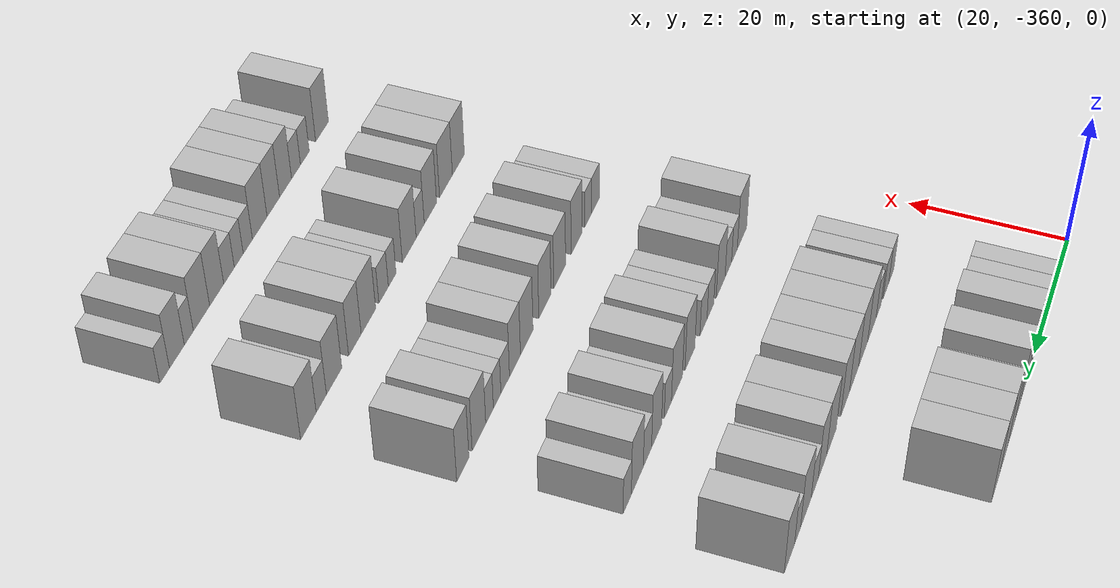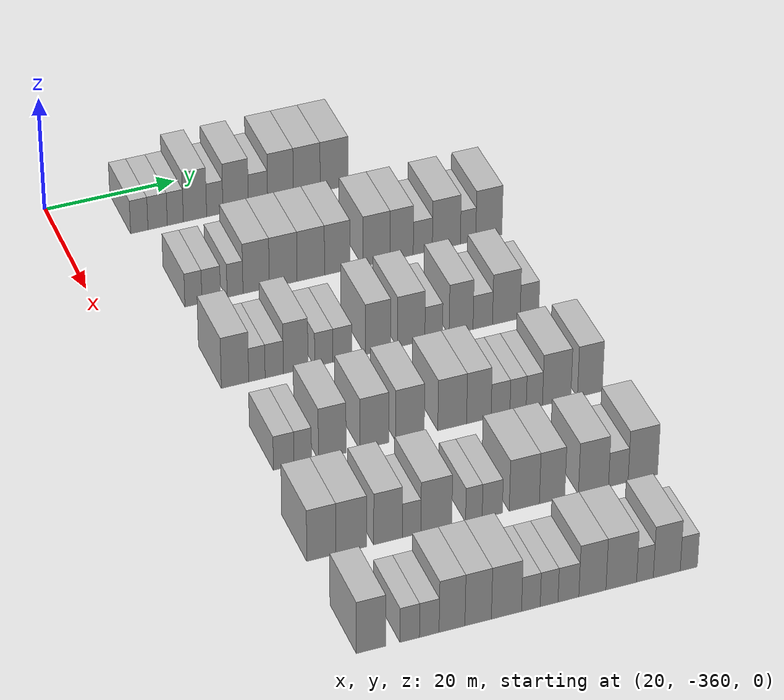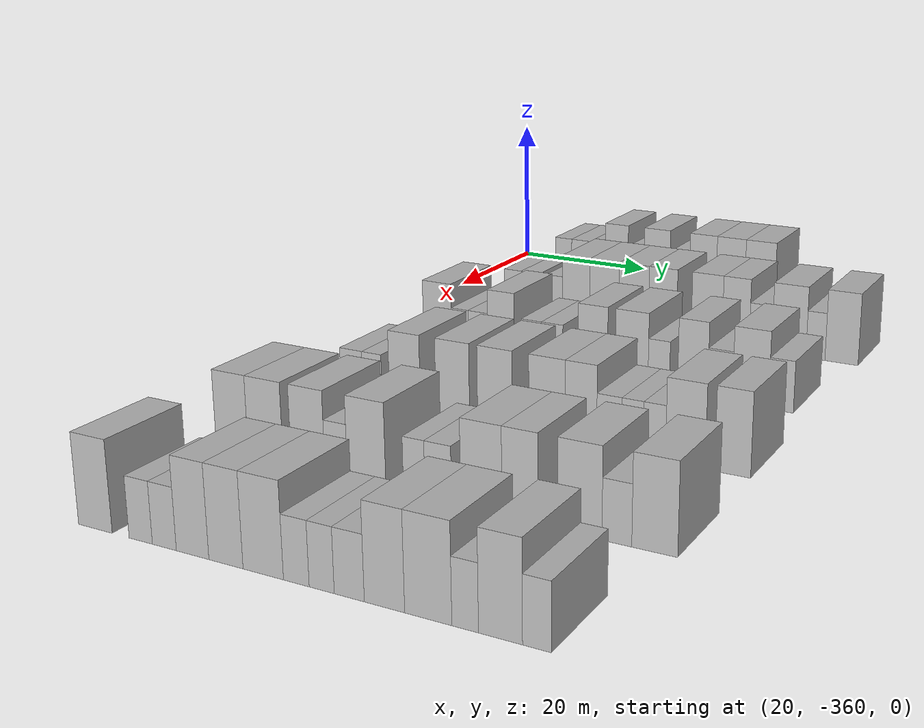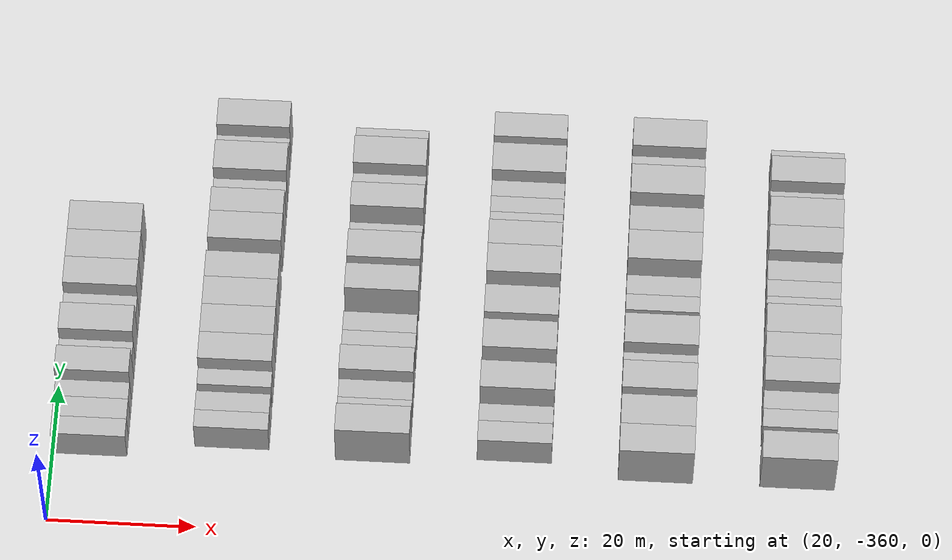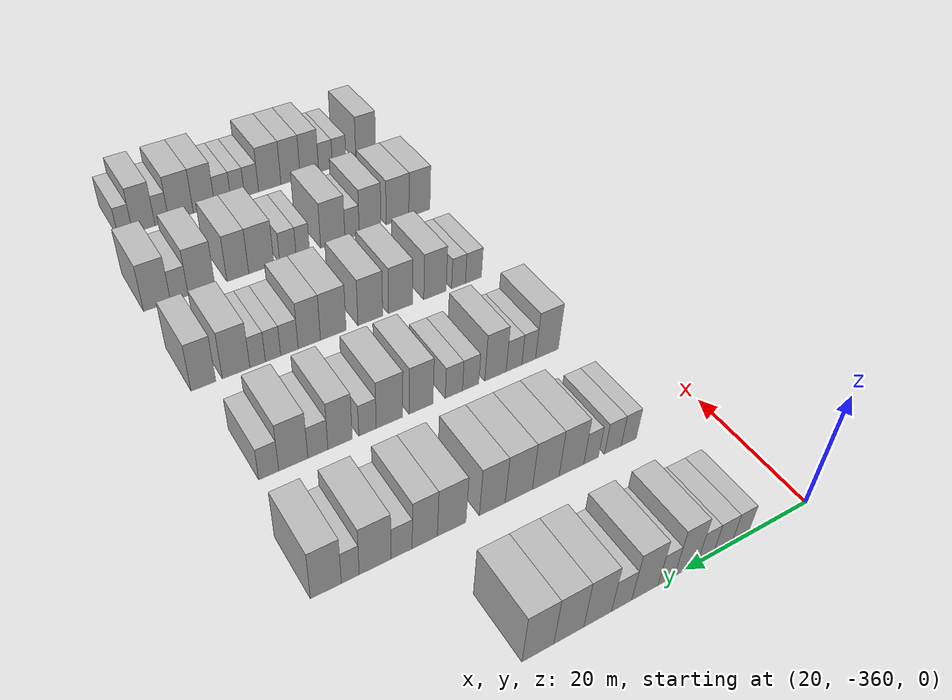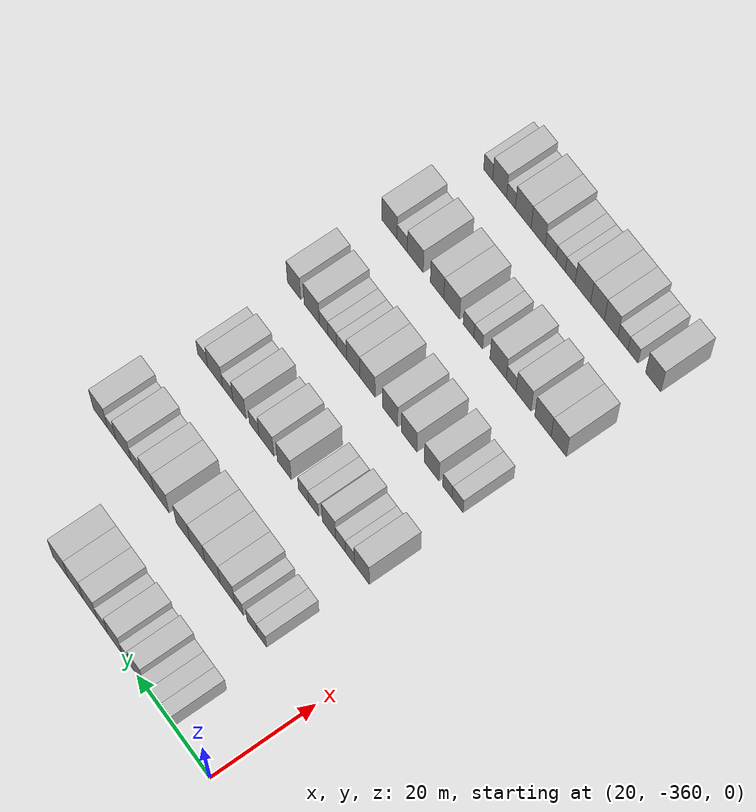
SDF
<sdf version="1.6">
 <world name="default">
  <model name="building_1">
   <static>1</static>
   <pose>25.0000 -348.6661 0 0.000000 0.000000 0.000000</pose>
   <link name="link">
    <pose>0 0 3.00 0 0 0</pose>
    <collision name="collision"><geometry><box><size>10.0000 2.6678 6.0000</size></box></geometry></collision>
    <visual name="visual">
     <cast_shadows>0</cast_shadows>
     <geometry><box><size>10.0000 2.6678 6.0000</size></box></geometry>
     <material>
      <script>
       <uri>model://HANNAS_wall/materials/scripts</uri>
       <uri>model://HANNAS_wall/materials/textures</uri>
       <name>vrc/HANNAS_wall</name>
      </script>
     </material>
    </visual>
   </link>
  </model>
  <model name="building_2">
   <static>1</static>
   <pose>25.0000 -345.8453 0 0.000000 0.000000 0.000000</pose>
   <link name="link">
    <pose>0 0 3.00 0 0 0</pose>
    <collision name="collision"><geometry><box><size>10.0000 2.9737 6.0000</size></box></geometry></collision>
    <visual name="visual">
     <cast_shadows>0</cast_shadows>
     <geometry><box><size>10.0000 2.9737 6.0000</size></box></geometry>
     <material>
      <script>
       <uri>model://HANNAS_wall/materials/scripts</uri>
       <uri>model://HANNAS_wall/materials/textures</uri>
       <name>vrc/HANNAS_wall</name>
      </script>
     </material>
    </visual>
   </link>
  </model>
  <model name="building_3">
   <static>1</static>
   <pose>25.0000 -343.1168 0 0.000000 0.000000 0.000000</pose>
   <link name="link">
    <pose>0 0 3.00 0 0 0</pose>
    <collision name="collision"><geometry><box><size>10.0000 2.4832 6.0000</size></box></geometry></collision>
    <visual name="visual">
     <cast_shadows>0</cast_shadows>
     <geometry><box><size>10.0000 2.4832 6.0000</size></box></geometry>
     <material>
      <script>
       <uri>model://HANNAS_wall/materials/scripts</uri>
       <uri>model://HANNAS_wall/materials/textures</uri>
       <name>vrc/HANNAS_wall</name>
      </script>
     </material>
    </visual>
   </link>
  </model>
  <model name="building_4">
   <static>1</static>
   <pose>25.0000 -340.0743 0 0.000000 0.000000 0.000000</pose>
   <link name="link">
    <pose>0 0 4.50 0 0 0</pose>
    <collision name="collision"><geometry><box><size>10.0000 3.6019 9.0000</size></box></geometry></collision>
    <visual name="visual">
     <cast_shadows>0</cast_shadows>
     <geometry><box><size>10.0000 3.6019 9.0000</size></box></geometry>
     <material>
      <script>
       <uri>model://HANNAS_wall/materials/scripts</uri>
       <uri>model://HANNAS_wall/materials/textures</uri>
       <name>vrc/HANNAS_wall</name>
      </script>
     </material>
    </visual>
   </link>
  </model>
  <model name="building_5">
   <static>1</static>
   <pose>25.0000 -337.0081 0 0.000000 0.000000 0.000000</pose>
   <link name="link">
    <pose>0 0 3.00 0 0 0</pose>
    <collision name="collision"><geometry><box><size>10.0000 2.5305 6.0000</size></box></geometry></collision>
    <visual name="visual">
     <cast_shadows>0</cast_shadows>
     <geometry><box><size>10.0000 2.5305 6.0000</size></box></geometry>
     <material>
      <script>
       <uri>model://HANNAS_wall/materials/scripts</uri>
       <uri>model://HANNAS_wall/materials/textures</uri>
       <name>vrc/HANNAS_wall</name>
      </script>
     </material>
    </visual>
   </link>
  </model>
  <model name="building_6">
   <static>1</static>
   <pose>25.0000 -333.7592 0 0.000000 0.000000 0.000000</pose>
   <link name="link">
    <pose>0 0 4.50 0 0 0</pose>
    <collision name="collision"><geometry><box><size>10.0000 3.9671 9.0000</size></box></geometry></collision>
    <visual name="visual">
     <cast_shadows>0</cast_shadows>
     <geometry><box><size>10.0000 3.9671 9.0000</size></box></geometry>
     <material>
      <script>
       <uri>model://HANNAS_wall/materials/scripts</uri>
       <uri>model://HANNAS_wall/materials/textures</uri>
       <name>vrc/HANNAS_wall</name>
      </script>
     </material>
    </visual>
   </link>
  </model>
  <model name="building_7">
   <static>1</static>
   <pose>25.0000 -330.2775 0 0.000000 0.000000 0.000000</pose>
   <link name="link">
    <pose>0 0 3.00 0 0 0</pose>
    <collision name="collision"><geometry><box><size>10.0000 2.9964 6.0000</size></box></geometry></collision>
    <visual name="visual">
     <cast_shadows>0</cast_shadows>
     <geometry><box><size>10.0000 2.9964 6.0000</size></box></geometry>
     <material>
      <script>
       <uri>model://HANNAS_wall/materials/scripts</uri>
       <uri>model://HANNAS_wall/materials/textures</uri>
       <name>vrc/HANNAS_wall</name>
      </script>
     </material>
    </visual>
   </link>
  </model>
  <model name="building_8">
   <static>1</static>
   <pose>25.0000 -326.7685 0 0.000000 0.000000 0.000000</pose>
   <link name="link">
    <pose>0 0 4.50 0 0 0</pose>
    <collision name="collision"><geometry><box><size>10.0000 4.0214 9.0000</size></box></geometry></collision>
    <visual name="visual">
     <cast_shadows>0</cast_shadows>
     <geometry><box><size>10.0000 4.0214 9.0000</size></box></geometry>
     <material>
      <script>
       <uri>model://HANNAS_wall/materials/scripts</uri>
       <uri>model://HANNAS_wall/materials/textures</uri>
       <name>vrc/HANNAS_wall</name>
      </script>
     </material>
    </visual>
   </link>
  </model>
  <model name="building_9">
   <static>1</static>
   <pose>25.0000 -322.6493 0 0.000000 0.000000 0.000000</pose>
   <link name="link">
    <pose>0 0 4.50 0 0 0</pose>
    <collision name="collision"><geometry><box><size>10.0000 4.2170 9.0000</size></box></geometry></collision>
    <visual name="visual">
     <cast_shadows>0</cast_shadows>
     <geometry><box><size>10.0000 4.2170 9.0000</size></box></geometry>
     <material>
      <script>
       <uri>model://HANNAS_wall/materials/scripts</uri>
       <uri>model://HANNAS_wall/materials/textures</uri>
       <name>vrc/HANNAS_wall</name>
      </script>
     </material>
    </visual>
   </link>
  </model>
  <model name="building_10">
   <static>1</static>
   <pose>25.0000 -318.3505 0 0.000000 0.000000 0.000000</pose>
   <link name="link">
    <pose>0 0 4.50 0 0 0</pose>
    <collision name="collision"><geometry><box><size>10.0000 4.3807 9.0000</size></box></geometry></collision>
    <visual name="visual">
     <cast_shadows>0</cast_shadows>
     <geometry><box><size>10.0000 4.3807 9.0000</size></box></geometry>
     <material>
      <script>
       <uri>model://HANNAS_wall/materials/scripts</uri>
       <uri>model://HANNAS_wall/materials/textures</uri>
       <name>vrc/HANNAS_wall</name>
      </script>
     </material>
    </visual>
   </link>
  </model>
  <model name="building_177">
   <static>1</static>
   <pose>44.0000 -346.7183 0 0.000000 0.000000 0.000000</pose>
   <link name="link">
    <pose>0 0 3.00 0 0 0</pose>
    <collision name="collision"><geometry><box><size>10.0000 2.5633 6.0000</size></box></geometry></collision>
    <visual name="visual">
     <cast_shadows>0</cast_shadows>
     <geometry><box><size>10.0000 2.5633 6.0000</size></box></geometry>
     <material>
      <script>
       <uri>model://HANNAS_wall/materials/scripts</uri>
       <uri>model://HANNAS_wall/materials/textures</uri>
       <name>vrc/HANNAS_wall</name>
      </script>
     </material>
    </visual>
   </link>
  </model>
  <model name="building_178">
   <static>1</static>
   <pose>44.0000 -344.0302 0 0.000000 0.000000 0.000000</pose>
   <link name="link">
    <pose>0 0 3.00 0 0 0</pose>
    <collision name="collision"><geometry><box><size>10.0000 2.8129 6.0000</size></box></geometry></collision>
    <visual name="visual">
     <cast_shadows>0</cast_shadows>
     <geometry><box><size>10.0000 2.8129 6.0000</size></box></geometry>
     <material>
      <script>
       <uri>model://HANNAS_wall/materials/scripts</uri>
       <uri>model://HANNAS_wall/materials/textures</uri>
       <name>vrc/HANNAS_wall</name>
      </script>
     </material>
    </visual>
   </link>
  </model>
  <model name="building_179">
   <static>1</static>
   <pose>44.0000 -340.4170 0 0.000000 0.000000 0.000000</pose>
   <link name="link">
    <pose>0 0 3.00 0 0 0</pose>
    <collision name="collision"><geometry><box><size>10.0000 2.4136 6.0000</size></box></geometry></collision>
    <visual name="visual">
     <cast_shadows>0</cast_shadows>
     <geometry><box><size>10.0000 2.4136 6.0000</size></box></geometry>
     <material>
      <script>
       <uri>model://HANNAS_wall/materials/scripts</uri>
       <uri>model://HANNAS_wall/materials/textures</uri>
       <name>vrc/HANNAS_wall</name>
      </script>
     </material>
    </visual>
   </link>
  </model>
  <model name="building_180">
   <static>1</static>
   <pose>44.0000 -337.2075 0 0.000000 0.000000 0.000000</pose>
   <link name="link">
    <pose>0 0 4.50 0 0 0</pose>
    <collision name="collision"><geometry><box><size>10.0000 4.0053 9.0000</size></box></geometry></collision>
    <visual name="visual">
     <cast_shadows>0</cast_shadows>
     <geometry><box><size>10.0000 4.0053 9.0000</size></box></geometry>
     <material>
      <script>
       <uri>model://HANNAS_wall/materials/scripts</uri>
       <uri>model://HANNAS_wall/materials/textures</uri>
       <name>vrc/HANNAS_wall</name>
      </script>
     </material>
    </visual>
   </link>
  </model>
  <model name="building_181">
   <static>1</static>
   <pose>44.0000 -333.0869 0 0.000000 0.000000 0.000000</pose>
   <link name="link">
    <pose>0 0 4.50 0 0 0</pose>
    <collision name="collision"><geometry><box><size>10.0000 4.2360 9.0000</size></box></geometry></collision>
    <visual name="visual">
     <cast_shadows>0</cast_shadows>
     <geometry><box><size>10.0000 4.2360 9.0000</size></box></geometry>
     <material>
      <script>
       <uri>model://HANNAS_wall/materials/scripts</uri>
       <uri>model://HANNAS_wall/materials/textures</uri>
       <name>vrc/HANNAS_wall</name>
      </script>
     </material>
    </visual>
   </link>
  </model>
  <model name="building_182">
   <static>1</static>
   <pose>44.0000 -328.8672 0 0.000000 0.000000 0.000000</pose>
   <link name="link">
    <pose>0 0 4.50 0 0 0</pose>
    <collision name="collision"><geometry><box><size>10.0000 4.2033 9.0000</size></box></geometry></collision>
    <visual name="visual">
     <cast_shadows>0</cast_shadows>
     <geometry><box><size>10.0000 4.2033 9.0000</size></box></geometry>
     <material>
      <script>
       <uri>model://HANNAS_wall/materials/scripts</uri>
       <uri>model://HANNAS_wall/materials/textures</uri>
       <name>vrc/HANNAS_wall</name>
      </script>
     </material>
    </visual>
   </link>
  </model>
  <model name="building_183">
   <static>1</static>
   <pose>44.0000 -324.8132 0 0.000000 0.000000 0.000000</pose>
   <link name="link">
    <pose>0 0 4.50 0 0 0</pose>
    <collision name="collision"><geometry><box><size>10.0000 3.9048 9.0000</size></box></geometry></collision>
    <visual name="visual">
     <cast_shadows>0</cast_shadows>
     <geometry><box><size>10.0000 3.9048 9.0000</size></box></geometry>
     <material>
      <script>
       <uri>model://HANNAS_wall/materials/scripts</uri>
       <uri>model://HANNAS_wall/materials/textures</uri>
       <name>vrc/HANNAS_wall</name>
      </script>
     </material>
    </visual>
   </link>
  </model>
  <model name="building_184">
   <static>1</static>
   <pose>44.0000 -318.7658 0 0.000000 0.000000 0.000000</pose>
   <link name="link">
    <pose>0 0 4.50 0 0 0</pose>
    <collision name="collision"><geometry><box><size>10.0000 4.1901 9.0000</size></box></geometry></collision>
    <visual name="visual">
     <cast_shadows>0</cast_shadows>
     <geometry><box><size>10.0000 4.1901 9.0000</size></box></geometry>
     <material>
      <script>
       <uri>model://HANNAS_wall/materials/scripts</uri>
       <uri>model://HANNAS_wall/materials/textures</uri>
       <name>vrc/HANNAS_wall</name>
      </script>
     </material>
    </visual>
   </link>
  </model>
  <model name="building_185">
   <static>1</static>
   <pose>44.0000 -314.8689 0 0.000000 0.000000 0.000000</pose>
   <link name="link">
    <pose>0 0 4.50 0 0 0</pose>
    <collision name="collision"><geometry><box><size>10.0000 3.6038 9.0000</size></box></geometry></collision>
    <visual name="visual">
     <cast_shadows>0</cast_shadows>
     <geometry><box><size>10.0000 3.6038 9.0000</size></box></geometry>
     <material>
      <script>
       <uri>model://HANNAS_wall/materials/scripts</uri>
       <uri>model://HANNAS_wall/materials/textures</uri>
       <name>vrc/HANNAS_wall</name>
      </script>
     </material>
    </visual>
   </link>
  </model>
  <model name="building_186">
   <static>1</static>
   <pose>44.0000 -311.5835 0 0.000000 0.000000 0.000000</pose>
   <link name="link">
    <pose>0 0 3.00 0 0 0</pose>
    <collision name="collision"><geometry><box><size>10.0000 2.9669 6.0000</size></box></geometry></collision>
    <visual name="visual">
     <cast_shadows>0</cast_shadows>
     <geometry><box><size>10.0000 2.9669 6.0000</size></box></geometry>
     <material>
      <script>
       <uri>model://HANNAS_wall/materials/scripts</uri>
       <uri>model://HANNAS_wall/materials/textures</uri>
       <name>vrc/HANNAS_wall</name>
      </script>
     </material>
    </visual>
   </link>
  </model>
  <model name="building_187">
   <static>1</static>
   <pose>44.0000 -307.9130 0 0.000000 0.000000 0.000000</pose>
   <link name="link">
    <pose>0 0 4.50 0 0 0</pose>
    <collision name="collision"><geometry><box><size>10.0000 4.3741 9.0000</size></box></geometry></collision>
    <visual name="visual">
     <cast_shadows>0</cast_shadows>
     <geometry><box><size>10.0000 4.3741 9.0000</size></box></geometry>
     <material>
      <script>
       <uri>model://HANNAS_wall/materials/scripts</uri>
       <uri>model://HANNAS_wall/materials/textures</uri>
       <name>vrc/HANNAS_wall</name>
      </script>
     </material>
    </visual>
   </link>
  </model>
  <model name="building_188">
   <static>1</static>
   <pose>44.0000 -304.5210 0 0.000000 0.000000 0.000000</pose>
   <link name="link">
    <pose>0 0 3.00 0 0 0</pose>
    <collision name="collision"><geometry><box><size>10.0000 2.4099 6.0000</size></box></geometry></collision>
    <visual name="visual">
     <cast_shadows>0</cast_shadows>
     <geometry><box><size>10.0000 2.4099 6.0000</size></box></geometry>
     <material>
      <script>
       <uri>model://HANNAS_wall/materials/scripts</uri>
       <uri>model://HANNAS_wall/materials/textures</uri>
       <name>vrc/HANNAS_wall</name>
      </script>
     </material>
    </visual>
   </link>
  </model>
  <model name="building_189">
   <static>1</static>
   <pose>44.0000 -301.2629 0 0.000000 0.000000 0.000000</pose>
   <link name="link">
    <pose>0 0 4.50 0 0 0</pose>
    <collision name="collision"><geometry><box><size>10.0000 4.1062 9.0000</size></box></geometry></collision>
    <visual name="visual">
     <cast_shadows>0</cast_shadows>
     <geometry><box><size>10.0000 4.1062 9.0000</size></box></geometry>
     <material>
      <script>
       <uri>model://HANNAS_wall/materials/scripts</uri>
       <uri>model://HANNAS_wall/materials/textures</uri>
       <name>vrc/HANNAS_wall</name>
      </script>
     </material>
    </visual>
   </link>
  </model>
  <model name="building_347">
   <static>1</static>
   <pose>63.0000 -346.9770 0 0.000000 0.000000 0.000000</pose>
   <link name="link">
    <pose>0 0 4.50 0 0 0</pose>
    <collision name="collision"><geometry><box><size>10.0000 4.0460 9.0000</size></box></geometry></collision>
    <visual name="visual">
     <cast_shadows>0</cast_shadows>
     <geometry><box><size>10.0000 4.0460 9.0000</size></box></geometry>
     <material>
      <script>
       <uri>model://HANNAS_wall/materials/scripts</uri>
       <uri>model://HANNAS_wall/materials/textures</uri>
       <name>vrc/HANNAS_wall</name>
      </script>
     </material>
    </visual>
   </link>
  </model>
  <model name="building_348">
   <static>1</static>
   <pose>63.0000 -343.7375 0 0.000000 0.000000 0.000000</pose>
   <link name="link">
    <pose>0 0 3.00 0 0 0</pose>
    <collision name="collision"><geometry><box><size>10.0000 2.4330 6.0000</size></box></geometry></collision>
    <visual name="visual">
     <cast_shadows>0</cast_shadows>
     <geometry><box><size>10.0000 2.4330 6.0000</size></box></geometry>
     <material>
      <script>
       <uri>model://HANNAS_wall/materials/scripts</uri>
       <uri>model://HANNAS_wall/materials/textures</uri>
       <name>vrc/HANNAS_wall</name>
      </script>
     </material>
    </visual>
   </link>
  </model>
  <model name="building_349">
   <static>1</static>
   <pose>63.0000 -341.1659 0 0.000000 0.000000 0.000000</pose>
   <link name="link">
    <pose>0 0 3.00 0 0 0</pose>
    <collision name="collision"><geometry><box><size>10.0000 2.7102 6.0000</size></box></geometry></collision>
    <visual name="visual">
     <cast_shadows>0</cast_shadows>
     <geometry><box><size>10.0000 2.7102 6.0000</size></box></geometry>
     <material>
      <script>
       <uri>model://HANNAS_wall/materials/scripts</uri>
       <uri>model://HANNAS_wall/materials/textures</uri>
       <name>vrc/HANNAS_wall</name>
      </script>
     </material>
    </visual>
   </link>
  </model>
  <model name="building_350">
   <static>1</static>
   <pose>63.0000 -337.9791 0 0.000000 0.000000 0.000000</pose>
   <link name="link">
    <pose>0 0 4.50 0 0 0</pose>
    <collision name="collision"><geometry><box><size>10.0000 3.6634 9.0000</size></box></geometry></collision>
    <visual name="visual">
     <cast_shadows>0</cast_shadows>
     <geometry><box><size>10.0000 3.6634 9.0000</size></box></geometry>
     <material>
      <script>
       <uri>model://HANNAS_wall/materials/scripts</uri>
       <uri>model://HANNAS_wall/materials/textures</uri>
       <name>vrc/HANNAS_wall</name>
      </script>
     </material>
    </visual>
   </link>
  </model>
  <model name="building_351">
   <static>1</static>
   <pose>63.0000 -333.7774 0 0.000000 0.000000 0.000000</pose>
   <link name="link">
    <pose>0 0 3.00 0 0 0</pose>
    <collision name="collision"><geometry><box><size>10.0000 2.7399 6.0000</size></box></geometry></collision>
    <visual name="visual">
     <cast_shadows>0</cast_shadows>
     <geometry><box><size>10.0000 2.7399 6.0000</size></box></geometry>
     <material>
      <script>
       <uri>model://HANNAS_wall/materials/scripts</uri>
       <uri>model://HANNAS_wall/materials/textures</uri>
       <name>vrc/HANNAS_wall</name>
      </script>
     </material>
    </visual>
   </link>
  </model>
  <model name="building_352">
   <static>1</static>
   <pose>63.0000 -330.9881 0 0.000000 0.000000 0.000000</pose>
   <link name="link">
    <pose>0 0 3.00 0 0 0</pose>
    <collision name="collision"><geometry><box><size>10.0000 2.8388 6.0000</size></box></geometry></collision>
    <visual name="visual">
     <cast_shadows>0</cast_shadows>
     <geometry><box><size>10.0000 2.8388 6.0000</size></box></geometry>
     <material>
      <script>
       <uri>model://HANNAS_wall/materials/scripts</uri>
       <uri>model://HANNAS_wall/materials/textures</uri>
       <name>vrc/HANNAS_wall</name>
      </script>
     </material>
    </visual>
   </link>
  </model>
  <model name="building_353">
   <static>1</static>
   <pose>63.0000 -325.6469 0 0.000000 0.000000 0.000000</pose>
   <link name="link">
    <pose>0 0 4.50 0 0 0</pose>
    <collision name="collision"><geometry><box><size>10.0000 3.8435 9.0000</size></box></geometry></collision>
    <visual name="visual">
     <cast_shadows>0</cast_shadows>
     <geometry><box><size>10.0000 3.8435 9.0000</size></box></geometry>
     <material>
      <script>
       <uri>model://HANNAS_wall/materials/scripts</uri>
       <uri>model://HANNAS_wall/materials/textures</uri>
       <name>vrc/HANNAS_wall</name>
      </script>
     </material>
    </visual>
   </link>
  </model>
  <model name="building_354">
   <static>1</static>
   <pose>63.0000 -320.6453 0 0.000000 0.000000 0.000000</pose>
   <link name="link">
    <pose>0 0 4.50 0 0 0</pose>
    <collision name="collision"><geometry><box><size>10.0000 4.1598 9.0000</size></box></geometry></collision>
    <visual name="visual">
     <cast_shadows>0</cast_shadows>
     <geometry><box><size>10.0000 4.1598 9.0000</size></box></geometry>
     <material>
      <script>
       <uri>model://HANNAS_wall/materials/scripts</uri>
       <uri>model://HANNAS_wall/materials/textures</uri>
       <name>vrc/HANNAS_wall</name>
      </script>
     </material>
    </visual>
   </link>
  </model>
  <model name="building_355">
   <static>1</static>
   <pose>63.0000 -317.2265 0 0.000000 0.000000 0.000000</pose>
   <link name="link">
    <pose>0 0 3.00 0 0 0</pose>
    <collision name="collision"><geometry><box><size>10.0000 2.6778 6.0000</size></box></geometry></collision>
    <visual name="visual">
     <cast_shadows>0</cast_shadows>
     <geometry><box><size>10.0000 2.6778 6.0000</size></box></geometry>
     <material>
      <script>
       <uri>model://HANNAS_wall/materials/scripts</uri>
       <uri>model://HANNAS_wall/materials/textures</uri>
       <name>vrc/HANNAS_wall</name>
      </script>
     </material>
    </visual>
   </link>
  </model>
  <model name="building_356">
   <static>1</static>
   <pose>63.0000 -313.0589 0 0.000000 0.000000 0.000000</pose>
   <link name="link">
    <pose>0 0 4.50 0 0 0</pose>
    <collision name="collision"><geometry><box><size>10.0000 3.6575 9.0000</size></box></geometry></collision>
    <visual name="visual">
     <cast_shadows>0</cast_shadows>
     <geometry><box><size>10.0000 3.6575 9.0000</size></box></geometry>
     <material>
      <script>
       <uri>model://HANNAS_wall/materials/scripts</uri>
       <uri>model://HANNAS_wall/materials/textures</uri>
       <name>vrc/HANNAS_wall</name>
      </script>
     </material>
    </visual>
   </link>
  </model>
  <model name="building_357">
   <static>1</static>
   <pose>63.0000 -309.7462 0 0.000000 0.000000 0.000000</pose>
   <link name="link">
    <pose>0 0 3.00 0 0 0</pose>
    <collision name="collision"><geometry><box><size>10.0000 2.9679 6.0000</size></box></geometry></collision>
    <visual name="visual">
     <cast_shadows>0</cast_shadows>
     <geometry><box><size>10.0000 2.9679 6.0000</size></box></geometry>
     <material>
      <script>
       <uri>model://HANNAS_wall/materials/scripts</uri>
       <uri>model://HANNAS_wall/materials/textures</uri>
       <name>vrc/HANNAS_wall</name>
      </script>
     </material>
    </visual>
   </link>
  </model>
  <model name="building_358">
   <static>1</static>
   <pose>63.0000 -306.1478 0 0.000000 0.000000 0.000000</pose>
   <link name="link">
    <pose>0 0 4.50 0 0 0</pose>
    <collision name="collision"><geometry><box><size>10.0000 4.2288 9.0000</size></box></geometry></collision>
    <visual name="visual">
     <cast_shadows>0</cast_shadows>
     <geometry><box><size>10.0000 4.2288 9.0000</size></box></geometry>
     <material>
      <script>
       <uri>model://HANNAS_wall/materials/scripts</uri>
       <uri>model://HANNAS_wall/materials/textures</uri>
       <name>vrc/HANNAS_wall</name>
      </script>
     </material>
    </visual>
   </link>
  </model>
  <model name="building_359">
   <static>1</static>
   <pose>63.0000 -302.5967 0 0.000000 0.000000 0.000000</pose>
   <link name="link">
    <pose>0 0 3.00 0 0 0</pose>
    <collision name="collision"><geometry><box><size>10.0000 2.8734 6.0000</size></box></geometry></collision>
    <visual name="visual">
     <cast_shadows>0</cast_shadows>
     <geometry><box><size>10.0000 2.8734 6.0000</size></box></geometry>
     <material>
      <script>
       <uri>model://HANNAS_wall/materials/scripts</uri>
       <uri>model://HANNAS_wall/materials/textures</uri>
       <name>vrc/HANNAS_wall</name>
      </script>
     </material>
    </visual>
   </link>
  </model>
  <model name="building_518">
   <static>1</static>
   <pose>82.0000 -346.5115 0 0.000000 0.000000 0.000000</pose>
   <link name="link">
    <pose>0 0 3.00 0 0 0</pose>
    <collision name="collision"><geometry><box><size>10.0000 2.9770 6.0000</size></box></geometry></collision>
    <visual name="visual">
     <cast_shadows>0</cast_shadows>
     <geometry><box><size>10.0000 2.9770 6.0000</size></box></geometry>
     <material>
      <script>
       <uri>model://HANNAS_wall/materials/scripts</uri>
       <uri>model://HANNAS_wall/materials/textures</uri>
       <name>vrc/HANNAS_wall</name>
      </script>
     </material>
    </visual>
   </link>
  </model>
  <model name="building_519">
   <static>1</static>
   <pose>82.0000 -343.7488 0 0.000000 0.000000 0.000000</pose>
   <link name="link">
    <pose>0 0 3.00 0 0 0</pose>
    <collision name="collision"><geometry><box><size>10.0000 2.5485 6.0000</size></box></geometry></collision>
    <visual name="visual">
     <cast_shadows>0</cast_shadows>
     <geometry><box><size>10.0000 2.5485 6.0000</size></box></geometry>
     <material>
      <script>
       <uri>model://HANNAS_wall/materials/scripts</uri>
       <uri>model://HANNAS_wall/materials/textures</uri>
       <name>vrc/HANNAS_wall</name>
      </script>
     </material>
    </visual>
   </link>
  </model>
  <model name="building_520">
   <static>1</static>
   <pose>82.0000 -339.4590 0 0.000000 0.000000 0.000000</pose>
   <link name="link">
    <pose>0 0 4.50 0 0 0</pose>
    <collision name="collision"><geometry><box><size>10.0000 4.0311 9.0000</size></box></geometry></collision>
    <visual name="visual">
     <cast_shadows>0</cast_shadows>
     <geometry><box><size>10.0000 4.0311 9.0000</size></box></geometry>
     <material>
      <script>
       <uri>model://HANNAS_wall/materials/scripts</uri>
       <uri>model://HANNAS_wall/materials/textures</uri>
       <name>vrc/HANNAS_wall</name>
      </script>
     </material>
    </visual>
   </link>
  </model>
  <model name="building_521">
   <static>1</static>
   <pose>82.0000 -333.3195 0 0.000000 0.000000 0.000000</pose>
   <link name="link">
    <pose>0 0 4.50 0 0 0</pose>
    <collision name="collision"><geometry><box><size>10.0000 4.2479 9.0000</size></box></geometry></collision>
    <visual name="visual">
     <cast_shadows>0</cast_shadows>
     <geometry><box><size>10.0000 4.2479 9.0000</size></box></geometry>
     <material>
      <script>
       <uri>model://HANNAS_wall/materials/scripts</uri>
       <uri>model://HANNAS_wall/materials/textures</uri>
       <name>vrc/HANNAS_wall</name>
      </script>
     </material>
    </visual>
   </link>
  </model>
  <model name="building_522">
   <static>1</static>
   <pose>82.0000 -328.0769 0 0.000000 0.000000 0.000000</pose>
   <link name="link">
    <pose>0 0 4.50 0 0 0</pose>
    <collision name="collision"><geometry><box><size>10.0000 4.2374 9.0000</size></box></geometry></collision>
    <visual name="visual">
     <cast_shadows>0</cast_shadows>
     <geometry><box><size>10.0000 4.2374 9.0000</size></box></geometry>
     <material>
      <script>
       <uri>model://HANNAS_wall/materials/scripts</uri>
       <uri>model://HANNAS_wall/materials/textures</uri>
       <name>vrc/HANNAS_wall</name>
      </script>
     </material>
    </visual>
   </link>
  </model>
  <model name="building_523">
   <static>1</static>
   <pose>82.0000 -321.8247 0 0.000000 0.000000 0.000000</pose>
   <link name="link">
    <pose>0 0 4.50 0 0 0</pose>
    <collision name="collision"><geometry><box><size>10.0000 4.2670 9.0000</size></box></geometry></collision>
    <visual name="visual">
     <cast_shadows>0</cast_shadows>
     <geometry><box><size>10.0000 4.2670 9.0000</size></box></geometry>
     <material>
      <script>
       <uri>model://HANNAS_wall/materials/scripts</uri>
       <uri>model://HANNAS_wall/materials/textures</uri>
       <name>vrc/HANNAS_wall</name>
      </script>
     </material>
    </visual>
   </link>
  </model>
  <model name="building_524">
   <static>1</static>
   <pose>82.0000 -317.8679 0 0.000000 0.000000 0.000000</pose>
   <link name="link">
    <pose>0 0 4.50 0 0 0</pose>
    <collision name="collision"><geometry><box><size>10.0000 3.6467 9.0000</size></box></geometry></collision>
    <visual name="visual">
     <cast_shadows>0</cast_shadows>
     <geometry><box><size>10.0000 3.6467 9.0000</size></box></geometry>
     <material>
      <script>
       <uri>model://HANNAS_wall/materials/scripts</uri>
       <uri>model://HANNAS_wall/materials/textures</uri>
       <name>vrc/HANNAS_wall</name>
      </script>
     </material>
    </visual>
   </link>
  </model>
  <model name="building_525">
   <static>1</static>
   <pose>82.0000 -314.6354 0 0.000000 0.000000 0.000000</pose>
   <link name="link">
    <pose>0 0 3.00 0 0 0</pose>
    <collision name="collision"><geometry><box><size>10.0000 2.8183 6.0000</size></box></geometry></collision>
    <visual name="visual">
     <cast_shadows>0</cast_shadows>
     <geometry><box><size>10.0000 2.8183 6.0000</size></box></geometry>
     <material>
      <script>
       <uri>model://HANNAS_wall/materials/scripts</uri>
       <uri>model://HANNAS_wall/materials/textures</uri>
       <name>vrc/HANNAS_wall</name>
      </script>
     </material>
    </visual>
   </link>
  </model>
  <model name="building_526">
   <static>1</static>
   <pose>82.0000 -312.0172 0 0.000000 0.000000 0.000000</pose>
   <link name="link">
    <pose>0 0 3.00 0 0 0</pose>
    <collision name="collision"><geometry><box><size>10.0000 2.4183 6.0000</size></box></geometry></collision>
    <visual name="visual">
     <cast_shadows>0</cast_shadows>
     <geometry><box><size>10.0000 2.4183 6.0000</size></box></geometry>
     <material>
      <script>
       <uri>model://HANNAS_wall/materials/scripts</uri>
       <uri>model://HANNAS_wall/materials/textures</uri>
       <name>vrc/HANNAS_wall</name>
      </script>
     </material>
    </visual>
   </link>
  </model>
  <model name="building_527">
   <static>1</static>
   <pose>82.0000 -309.5855 0 0.000000 0.000000 0.000000</pose>
   <link name="link">
    <pose>0 0 3.00 0 0 0</pose>
    <collision name="collision"><geometry><box><size>10.0000 2.4452 6.0000</size></box></geometry></collision>
    <visual name="visual">
     <cast_shadows>0</cast_shadows>
     <geometry><box><size>10.0000 2.4452 6.0000</size></box></geometry>
     <material>
      <script>
       <uri>model://HANNAS_wall/materials/scripts</uri>
       <uri>model://HANNAS_wall/materials/textures</uri>
       <name>vrc/HANNAS_wall</name>
      </script>
     </material>
    </visual>
   </link>
  </model>
  <model name="building_528">
   <static>1</static>
   <pose>82.0000 -306.2295 0 0.000000 0.000000 0.000000</pose>
   <link name="link">
    <pose>0 0 4.50 0 0 0</pose>
    <collision name="collision"><geometry><box><size>10.0000 4.2667 9.0000</size></box></geometry></collision>
    <visual name="visual">
     <cast_shadows>0</cast_shadows>
     <geometry><box><size>10.0000 4.2667 9.0000</size></box></geometry>
     <material>
      <script>
       <uri>model://HANNAS_wall/materials/scripts</uri>
       <uri>model://HANNAS_wall/materials/textures</uri>
       <name>vrc/HANNAS_wall</name>
      </script>
     </material>
    </visual>
   </link>
  </model>
  <model name="building_529">
   <static>1</static>
   <pose>82.0000 -301.2225 0 0.000000 0.000000 0.000000</pose>
   <link name="link">
    <pose>0 0 4.50 0 0 0</pose>
    <collision name="collision"><geometry><box><size>10.0000 3.7472 9.0000</size></box></geometry></collision>
    <visual name="visual">
     <cast_shadows>0</cast_shadows>
     <geometry><box><size>10.0000 3.7472 9.0000</size></box></geometry>
     <material>
      <script>
       <uri>model://HANNAS_wall/materials/scripts</uri>
       <uri>model://HANNAS_wall/materials/textures</uri>
       <name>vrc/HANNAS_wall</name>
      </script>
     </material>
    </visual>
   </link>
  </model>
  <model name="building_692">
   <static>1</static>
   <pose>101.0000 -347.9391 0 0.000000 0.000000 0.000000</pose>
   <link name="link">
    <pose>0 0 4.50 0 0 0</pose>
    <collision name="collision"><geometry><box><size>10.0000 4.1217 9.0000</size></box></geometry></collision>
    <visual name="visual">
     <cast_shadows>0</cast_shadows>
     <geometry><box><size>10.0000 4.1217 9.0000</size></box></geometry>
     <material>
      <script>
       <uri>model://HANNAS_wall/materials/scripts</uri>
       <uri>model://HANNAS_wall/materials/textures</uri>
       <name>vrc/HANNAS_wall</name>
      </script>
     </material>
    </visual>
   </link>
  </model>
  <model name="building_693">
   <static>1</static>
   <pose>101.0000 -343.6896 0 0.000000 0.000000 0.000000</pose>
   <link name="link">
    <pose>0 0 4.50 0 0 0</pose>
    <collision name="collision"><geometry><box><size>10.0000 4.3773 9.0000</size></box></geometry></collision>
    <visual name="visual">
     <cast_shadows>0</cast_shadows>
     <geometry><box><size>10.0000 4.3773 9.0000</size></box></geometry>
     <material>
      <script>
       <uri>model://HANNAS_wall/materials/scripts</uri>
       <uri>model://HANNAS_wall/materials/textures</uri>
       <name>vrc/HANNAS_wall</name>
      </script>
     </material>
    </visual>
   </link>
  </model>
  <model name="building_694">
   <static>1</static>
   <pose>101.0000 -338.4591 0 0.000000 0.000000 0.000000</pose>
   <link name="link">
    <pose>0 0 4.50 0 0 0</pose>
    <collision name="collision"><geometry><box><size>10.0000 4.0838 9.0000</size></box></geometry></collision>
    <visual name="visual">
     <cast_shadows>0</cast_shadows>
     <geometry><box><size>10.0000 4.0838 9.0000</size></box></geometry>
     <material>
      <script>
       <uri>model://HANNAS_wall/materials/scripts</uri>
       <uri>model://HANNAS_wall/materials/textures</uri>
       <name>vrc/HANNAS_wall</name>
      </script>
     </material>
    </visual>
   </link>
  </model>
  <model name="building_695">
   <static>1</static>
   <pose>101.0000 -335.0877 0 0.000000 0.000000 0.000000</pose>
   <link name="link">
    <pose>0 0 3.00 0 0 0</pose>
    <collision name="collision"><geometry><box><size>10.0000 2.6589 6.0000</size></box></geometry></collision>
    <visual name="visual">
     <cast_shadows>0</cast_shadows>
     <geometry><box><size>10.0000 2.6589 6.0000</size></box></geometry>
     <material>
      <script>
       <uri>model://HANNAS_wall/materials/scripts</uri>
       <uri>model://HANNAS_wall/materials/textures</uri>
       <name>vrc/HANNAS_wall</name>
      </script>
     </material>
    </visual>
   </link>
  </model>
  <model name="building_696">
   <static>1</static>
   <pose>101.0000 -331.5316 0 0.000000 0.000000 0.000000</pose>
   <link name="link">
    <pose>0 0 4.50 0 0 0</pose>
    <collision name="collision"><geometry><box><size>10.0000 4.4532 9.0000</size></box></geometry></collision>
    <visual name="visual">
     <cast_shadows>0</cast_shadows>
     <geometry><box><size>10.0000 4.4532 9.0000</size></box></geometry>
     <material>
      <script>
       <uri>model://HANNAS_wall/materials/scripts</uri>
       <uri>model://HANNAS_wall/materials/textures</uri>
       <name>vrc/HANNAS_wall</name>
      </script>
     </material>
    </visual>
   </link>
  </model>
  <model name="building_697">
   <static>1</static>
   <pose>101.0000 -326.1023 0 0.000000 0.000000 0.000000</pose>
   <link name="link">
    <pose>0 0 3.00 0 0 0</pose>
    <collision name="collision"><geometry><box><size>10.0000 2.4052 6.0000</size></box></geometry></collision>
    <visual name="visual">
     <cast_shadows>0</cast_shadows>
     <geometry><box><size>10.0000 2.4052 6.0000</size></box></geometry>
     <material>
      <script>
       <uri>model://HANNAS_wall/materials/scripts</uri>
       <uri>model://HANNAS_wall/materials/textures</uri>
       <name>vrc/HANNAS_wall</name>
      </script>
     </material>
    </visual>
   </link>
  </model>
  <model name="building_698">
   <static>1</static>
   <pose>101.0000 -323.4378 0 0.000000 0.000000 0.000000</pose>
   <link name="link">
    <pose>0 0 3.00 0 0 0</pose>
    <collision name="collision"><geometry><box><size>10.0000 2.9239 6.0000</size></box></geometry></collision>
    <visual name="visual">
     <cast_shadows>0</cast_shadows>
     <geometry><box><size>10.0000 2.9239 6.0000</size></box></geometry>
     <material>
      <script>
       <uri>model://HANNAS_wall/materials/scripts</uri>
       <uri>model://HANNAS_wall/materials/textures</uri>
       <name>vrc/HANNAS_wall</name>
      </script>
     </material>
    </visual>
   </link>
  </model>
  <model name="building_699">
   <static>1</static>
   <pose>101.0000 -318.7827 0 0.000000 0.000000 0.000000</pose>
   <link name="link">
    <pose>0 0 4.50 0 0 0</pose>
    <collision name="collision"><geometry><box><size>10.0000 4.3863 9.0000</size></box></geometry></collision>
    <visual name="visual">
     <cast_shadows>0</cast_shadows>
     <geometry><box><size>10.0000 4.3863 9.0000</size></box></geometry>
     <material>
      <script>
       <uri>model://HANNAS_wall/materials/scripts</uri>
       <uri>model://HANNAS_wall/materials/textures</uri>
       <name>vrc/HANNAS_wall</name>
      </script>
     </material>
    </visual>
   </link>
  </model>
  <model name="building_700">
   <static>1</static>
   <pose>101.0000 -314.7304 0 0.000000 0.000000 0.000000</pose>
   <link name="link">
    <pose>0 0 4.50 0 0 0</pose>
    <collision name="collision"><geometry><box><size>10.0000 3.7182 9.0000</size></box></geometry></collision>
    <visual name="visual">
     <cast_shadows>0</cast_shadows>
     <geometry><box><size>10.0000 3.7182 9.0000</size></box></geometry>
     <material>
      <script>
       <uri>model://HANNAS_wall/materials/scripts</uri>
       <uri>model://HANNAS_wall/materials/textures</uri>
       <name>vrc/HANNAS_wall</name>
      </script>
     </material>
    </visual>
   </link>
  </model>
  <model name="building_701">
   <static>1</static>
   <pose>101.0000 -308.6586 0 0.000000 0.000000 0.000000</pose>
   <link name="link">
    <pose>0 0 4.50 0 0 0</pose>
    <collision name="collision"><geometry><box><size>10.0000 4.4255 9.0000</size></box></geometry></collision>
    <visual name="visual">
     <cast_shadows>0</cast_shadows>
     <geometry><box><size>10.0000 4.4255 9.0000</size></box></geometry>
     <material>
      <script>
       <uri>model://HANNAS_wall/materials/scripts</uri>
       <uri>model://HANNAS_wall/materials/textures</uri>
       <name>vrc/HANNAS_wall</name>
      </script>
     </material>
    </visual>
   </link>
  </model>
  <model name="building_702">
   <static>1</static>
   <pose>101.0000 -305.0013 0 0.000000 0.000000 0.000000</pose>
   <link name="link">
    <pose>0 0 3.00 0 0 0</pose>
    <collision name="collision"><geometry><box><size>10.0000 2.8889 6.0000</size></box></geometry></collision>
    <visual name="visual">
     <cast_shadows>0</cast_shadows>
     <geometry><box><size>10.0000 2.8889 6.0000</size></box></geometry>
     <material>
      <script>
       <uri>model://HANNAS_wall/materials/scripts</uri>
       <uri>model://HANNAS_wall/materials/textures</uri>
       <name>vrc/HANNAS_wall</name>
      </script>
     </material>
    </visual>
   </link>
  </model>
  <model name="building_703">
   <static>1</static>
   <pose>101.0000 -301.3816 0 0.000000 0.000000 0.000000</pose>
   <link name="link">
    <pose>0 0 4.50 0 0 0</pose>
    <collision name="collision"><geometry><box><size>10.0000 4.3506 9.0000</size></box></geometry></collision>
    <visual name="visual">
     <cast_shadows>0</cast_shadows>
     <geometry><box><size>10.0000 4.3506 9.0000</size></box></geometry>
     <material>
      <script>
       <uri>model://HANNAS_wall/materials/scripts</uri>
       <uri>model://HANNAS_wall/materials/textures</uri>
       <name>vrc/HANNAS_wall</name>
      </script>
     </material>
    </visual>
   </link>
  </model>
  <model name="building_865">
   <static>1</static>
   <pose>120.0000 -347.9685 0 0.000000 0.000000 0.000000</pose>
   <link name="link">
    <pose>0 0 4.50 0 0 0</pose>
    <collision name="collision"><geometry><box><size>10.0000 4.0630 9.0000</size></box></geometry></collision>
    <visual name="visual">
     <cast_shadows>0</cast_shadows>
     <geometry><box><size>10.0000 4.0630 9.0000</size></box></geometry>
     <material>
      <script>
       <uri>model://HANNAS_wall/materials/scripts</uri>
       <uri>model://HANNAS_wall/materials/textures</uri>
       <name>vrc/HANNAS_wall</name>
      </script>
     </material>
    </visual>
   </link>
  </model>
  <model name="building_866">
   <static>1</static>
   <pose>120.0000 -342.5790 0 0.000000 0.000000 0.000000</pose>
   <link name="link">
    <pose>0 0 3.00 0 0 0</pose>
    <collision name="collision"><geometry><box><size>10.0000 2.7160 6.0000</size></box></geometry></collision>
    <visual name="visual">
     <cast_shadows>0</cast_shadows>
     <geometry><box><size>10.0000 2.7160 6.0000</size></box></geometry>
     <material>
      <script>
       <uri>model://HANNAS_wall/materials/scripts</uri>
       <uri>model://HANNAS_wall/materials/textures</uri>
       <name>vrc/HANNAS_wall</name>
      </script>
     </material>
    </visual>
   </link>
  </model>
  <model name="building_867">
   <static>1</static>
   <pose>120.0000 -339.8524 0 0.000000 0.000000 0.000000</pose>
   <link name="link">
    <pose>0 0 3.00 0 0 0</pose>
    <collision name="collision"><geometry><box><size>10.0000 2.7371 6.0000</size></box></geometry></collision>
    <visual name="visual">
     <cast_shadows>0</cast_shadows>
     <geometry><box><size>10.0000 2.7371 6.0000</size></box></geometry>
     <material>
      <script>
       <uri>model://HANNAS_wall/materials/scripts</uri>
       <uri>model://HANNAS_wall/materials/textures</uri>
       <name>vrc/HANNAS_wall</name>
      </script>
     </material>
    </visual>
   </link>
  </model>
  <model name="building_868">
   <static>1</static>
   <pose>120.0000 -336.6700 0 0.000000 0.000000 0.000000</pose>
   <link name="link">
    <pose>0 0 4.50 0 0 0</pose>
    <collision name="collision"><geometry><box><size>10.0000 3.6277 9.0000</size></box></geometry></collision>
    <visual name="visual">
     <cast_shadows>0</cast_shadows>
     <geometry><box><size>10.0000 3.6277 9.0000</size></box></geometry>
     <material>
      <script>
       <uri>model://HANNAS_wall/materials/scripts</uri>
       <uri>model://HANNAS_wall/materials/textures</uri>
       <name>vrc/HANNAS_wall</name>
      </script>
     </material>
    </visual>
   </link>
  </model>
  <model name="building_869">
   <static>1</static>
   <pose>120.0000 -332.9954 0 0.000000 0.000000 0.000000</pose>
   <link name="link">
    <pose>0 0 4.50 0 0 0</pose>
    <collision name="collision"><geometry><box><size>10.0000 3.7215 9.0000</size></box></geometry></collision>
    <visual name="visual">
     <cast_shadows>0</cast_shadows>
     <geometry><box><size>10.0000 3.7215 9.0000</size></box></geometry>
     <material>
      <script>
       <uri>model://HANNAS_wall/materials/scripts</uri>
       <uri>model://HANNAS_wall/materials/textures</uri>
       <name>vrc/HANNAS_wall</name>
      </script>
     </material>
    </visual>
   </link>
  </model>
  <model name="building_870">
   <static>1</static>
   <pose>120.0000 -329.0042 0 0.000000 0.000000 0.000000</pose>
   <link name="link">
    <pose>0 0 4.50 0 0 0</pose>
    <collision name="collision"><geometry><box><size>10.0000 4.2607 9.0000</size></box></geometry></collision>
    <visual name="visual">
     <cast_shadows>0</cast_shadows>
     <geometry><box><size>10.0000 4.2607 9.0000</size></box></geometry>
     <material>
      <script>
       <uri>model://HANNAS_wall/materials/scripts</uri>
       <uri>model://HANNAS_wall/materials/textures</uri>
       <name>vrc/HANNAS_wall</name>
      </script>
     </material>
    </visual>
   </link>
  </model>
  <model name="building_871">
   <static>1</static>
   <pose>120.0000 -325.5510 0 0.000000 0.000000 0.000000</pose>
   <link name="link">
    <pose>0 0 3.00 0 0 0</pose>
    <collision name="collision"><geometry><box><size>10.0000 2.6458 6.0000</size></box></geometry></collision>
    <visual name="visual">
     <cast_shadows>0</cast_shadows>
     <geometry><box><size>10.0000 2.6458 6.0000</size></box></geometry>
     <material>
      <script>
       <uri>model://HANNAS_wall/materials/scripts</uri>
       <uri>model://HANNAS_wall/materials/textures</uri>
       <name>vrc/HANNAS_wall</name>
      </script>
     </material>
    </visual>
   </link>
  </model>
  <model name="building_872">
   <static>1</static>
   <pose>120.0000 -322.9634 0 0.000000 0.000000 0.000000</pose>
   <link name="link">
    <pose>0 0 3.00 0 0 0</pose>
    <collision name="collision"><geometry><box><size>10.0000 2.5295 6.0000</size></box></geometry></collision>
    <visual name="visual">
     <cast_shadows>0</cast_shadows>
     <geometry><box><size>10.0000 2.5295 6.0000</size></box></geometry>
     <material>
      <script>
       <uri>model://HANNAS_wall/materials/scripts</uri>
       <uri>model://HANNAS_wall/materials/textures</uri>
       <name>vrc/HANNAS_wall</name>
      </script>
     </material>
    </visual>
   </link>
  </model>
  <model name="building_873">
   <static>1</static>
   <pose>120.0000 -320.2144 0 0.000000 0.000000 0.000000</pose>
   <link name="link">
    <pose>0 0 3.00 0 0 0</pose>
    <collision name="collision"><geometry><box><size>10.0000 2.9685 6.0000</size></box></geometry></collision>
    <visual name="visual">
     <cast_shadows>0</cast_shadows>
     <geometry><box><size>10.0000 2.9685 6.0000</size></box></geometry>
     <material>
      <script>
       <uri>model://HANNAS_wall/materials/scripts</uri>
       <uri>model://HANNAS_wall/materials/textures</uri>
       <name>vrc/HANNAS_wall</name>
      </script>
     </material>
    </visual>
   </link>
  </model>
  <model name="building_874">
   <static>1</static>
   <pose>120.0000 -316.7912 0 0.000000 0.000000 0.000000</pose>
   <link name="link">
    <pose>0 0 4.50 0 0 0</pose>
    <collision name="collision"><geometry><box><size>10.0000 3.8779 9.0000</size></box></geometry></collision>
    <visual name="visual">
     <cast_shadows>0</cast_shadows>
     <geometry><box><size>10.0000 3.8779 9.0000</size></box></geometry>
     <material>
      <script>
       <uri>model://HANNAS_wall/materials/scripts</uri>
       <uri>model://HANNAS_wall/materials/textures</uri>
       <name>vrc/HANNAS_wall</name>
      </script>
     </material>
    </visual>
   </link>
  </model>
  <model name="building_875">
   <static>1</static>
   <pose>120.0000 -312.6581 0 0.000000 0.000000 0.000000</pose>
   <link name="link">
    <pose>0 0 4.50 0 0 0</pose>
    <collision name="collision"><geometry><box><size>10.0000 4.3884 9.0000</size></box></geometry></collision>
    <visual name="visual">
     <cast_shadows>0</cast_shadows>
     <geometry><box><size>10.0000 4.3884 9.0000</size></box></geometry>
     <material>
      <script>
       <uri>model://HANNAS_wall/materials/scripts</uri>
       <uri>model://HANNAS_wall/materials/textures</uri>
       <name>vrc/HANNAS_wall</name>
      </script>
     </material>
    </visual>
   </link>
  </model>
  <model name="building_876">
   <static>1</static>
   <pose>120.0000 -309.2584 0 0.000000 0.000000 0.000000</pose>
   <link name="link">
    <pose>0 0 3.00 0 0 0</pose>
    <collision name="collision"><geometry><box><size>10.0000 2.4110 6.0000</size></box></geometry></collision>
    <visual name="visual">
     <cast_shadows>0</cast_shadows>
     <geometry><box><size>10.0000 2.4110 6.0000</size></box></geometry>
     <material>
      <script>
       <uri>model://HANNAS_wall/materials/scripts</uri>
       <uri>model://HANNAS_wall/materials/textures</uri>
       <name>vrc/HANNAS_wall</name>
      </script>
     </material>
    </visual>
   </link>
  </model>
  <model name="building_877">
   <static>1</static>
   <pose>120.0000 -306.1099 0 0.000000 0.000000 0.000000</pose>
   <link name="link">
    <pose>0 0 4.50 0 0 0</pose>
    <collision name="collision"><geometry><box><size>10.0000 3.8859 9.0000</size></box></geometry></collision>
    <visual name="visual">
     <cast_shadows>0</cast_shadows>
     <geometry><box><size>10.0000 3.8859 9.0000</size></box></geometry>
     <material>
      <script>
       <uri>model://HANNAS_wall/materials/scripts</uri>
       <uri>model://HANNAS_wall/materials/textures</uri>
       <name>vrc/HANNAS_wall</name>
      </script>
     </material>
    </visual>
   </link>
  </model>
  <model name="building_878">
   <static>1</static>
   <pose>120.0000 -302.9223 0 0.000000 0.000000 0.000000</pose>
   <link name="link">
    <pose>0 0 3.00 0 0 0</pose>
    <collision name="collision"><geometry><box><size>10.0000 2.4893 6.0000</size></box></geometry></collision>
    <visual name="visual">
     <cast_shadows>0</cast_shadows>
     <geometry><box><size>10.0000 2.4893 6.0000</size></box></geometry>
     <material>
      <script>
       <uri>model://HANNAS_wall/materials/scripts</uri>
       <uri>model://HANNAS_wall/materials/textures</uri>
       <name>vrc/HANNAS_wall</name>
      </script>
     </material>
    </visual>
   </link>
  </model>
 </world>
</sdf>
